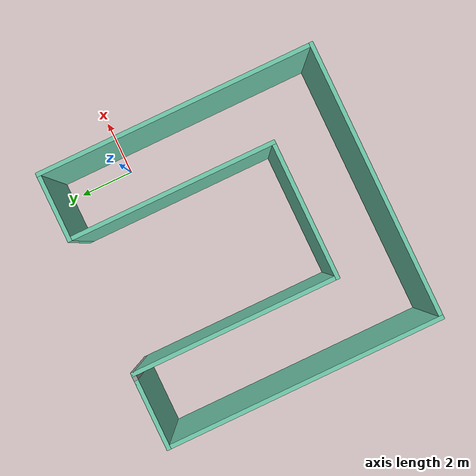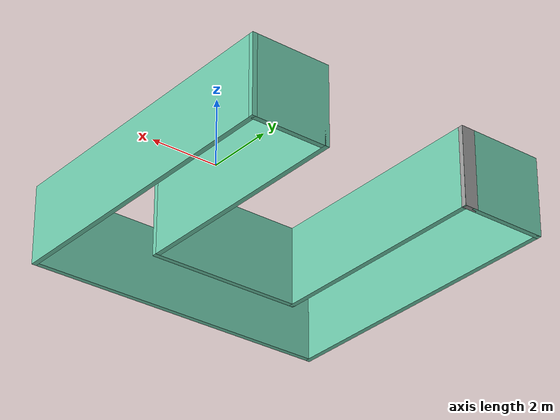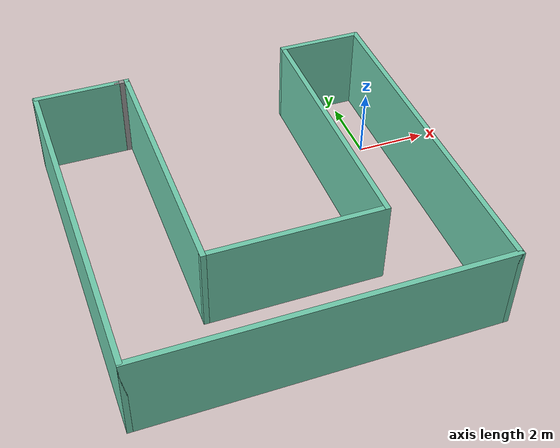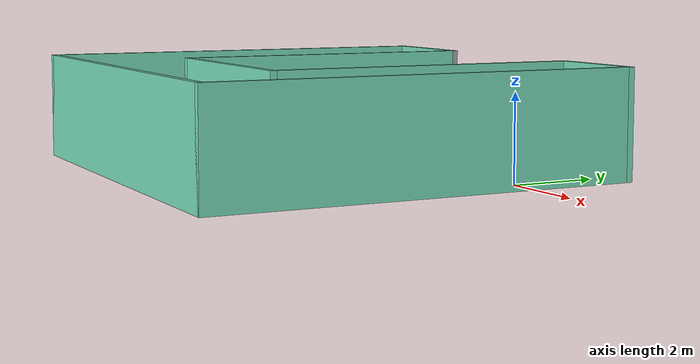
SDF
<?xml version='1.0'?>
<sdf version='1.6'>
  <model name='mybuilding'>
    <pose frame=''>-4.22308 -2.4766 0 0 -0 0</pose>
    <link name='Wall_0'>
      <collision name='Wall_0_Collision'>
        <geometry>
          <box>
            <size>2.5 0.15 2.5</size>
          </box>
        </geometry>
        <pose frame=''>0 0 1.25 0 -0 0</pose>
      </collision>
      <visual name='Wall_0_Visual'>
        <pose frame=''>0 0 1.25 0 -0 0</pose>
        <geometry>
          <box>
            <size>2.5 0.15 2.5</size>
          </box>
        </geometry>
        <material>
          <script>
            <uri>file://media/materials/scripts/gazebo.material</uri>
            <name>Gazebo/Grey</name>
          </script>
          <ambient>0.435294 0.796078 0.67451 1</ambient>
        </material>
        <meta>
          <layer>0</layer>
        </meta>
      </visual>
      <pose frame=''>-3.75 4.925 0 0 -0 3.14159</pose>
    </link>
    <link name='Wall_1'>
      <collision name='Wall_1_Collision'>
        <geometry>
          <box>
            <size>10 0.15 2.5</size>
          </box>
        </geometry>
        <pose frame=''>0 0 1.25 0 -0 0</pose>
      </collision>
      <visual name='Wall_1_Visual'>
        <pose frame=''>0 0 1.25 0 -0 0</pose>
        <geometry>
          <box>
            <size>10 0.15 2.5</size>
          </box>
        </geometry>
        <material>
          <script>
            <uri>file://media/materials/scripts/gazebo.material</uri>
            <name>Gazebo/Grey</name>
          </script>
          <ambient>0.435294 0.796078 0.67451 1</ambient>
        </material>
        <meta>
          <layer>0</layer>
        </meta>
      </visual>
      <pose frame=''>-4.925 0 0 0 0 -1.5708</pose>
    </link>
    <link name='Wall_2'>
      <collision name='Wall_2_Collision'>
        <geometry>
          <box>
            <size>10 0.15 2.5</size>
          </box>
        </geometry>
        <pose frame=''>0 0 1.25 0 -0 0</pose>
      </collision>
      <visual name='Wall_2_Visual'>
        <pose frame=''>0 0 1.25 0 -0 0</pose>
        <geometry>
          <box>
            <size>10 0.15 2.5</size>
          </box>
        </geometry>
        <material>
          <script>
            <uri>file://media/materials/scripts/gazebo.material</uri>
            <name>Gazebo/Grey</name>
          </script>
          <ambient>0.435294 0.796078 0.67451 1</ambient>
        </material>
        <meta>
          <layer>0</layer>
        </meta>
      </visual>
      <pose frame=''>0 -4.925 0 0 -0 0</pose>
    </link>
    <link name='Wall_3'>
      <collision name='Wall_3_Collision'>
        <geometry>
          <box>
            <size>10 0.15 2.5</size>
          </box>
        </geometry>
        <pose frame=''>0 0 1.25 0 -0 0</pose>
      </collision>
      <visual name='Wall_3_Visual'>
        <pose frame=''>0 0 1.25 0 -0 0</pose>
        <geometry>
          <box>
            <size>10 0.15 2.5</size>
          </box>
        </geometry>
        <material>
          <script>
            <uri>file://media/materials/scripts/gazebo.material</uri>
            <name>Gazebo/Grey</name>
          </script>
          <ambient>0.435294 0.796078 0.67451 1</ambient>
        </material>
        <meta>
          <layer>0</layer>
        </meta>
      </visual>
      <pose frame=''>4.925 0 0 0 -0 1.5708</pose>
    </link>
    <link name='Wall_4'>
      <collision name='Wall_4_Collision'>
        <geometry>
          <box>
            <size>2.5 0.15 2.5</size>
          </box>
        </geometry>
        <pose frame=''>0 0 1.25 0 -0 0</pose>
      </collision>
      <visual name='Wall_4_Visual'>
        <pose frame=''>0 0 1.25 0 -0 0</pose>
        <geometry>
          <box>
            <size>2.5 0.15 2.5</size>
          </box>
        </geometry>
        <material>
          <script>
            <uri>file://media/materials/scripts/gazebo.material</uri>
            <name>Gazebo/Grey</name>
          </script>
          <ambient>0.435294 0.796078 0.67451 1</ambient>
        </material>
        <meta>
          <layer>0</layer>
        </meta>
      </visual>
      <pose frame=''>3.75 4.925 0 0 -0 3.14159</pose>
    </link>
    <link name='Wall_5'>
      <collision name='Wall_5_Collision'>
        <geometry>
          <box>
            <size>7.5 0.15 2.5</size>
          </box>
        </geometry>
        <pose frame=''>0 0 1.25 0 -0 0</pose>
      </collision>
      <visual name='Wall_5_Visual'>
        <pose frame=''>0 0 1.25 0 -0 0</pose>
        <geometry>
          <box>
            <size>7.5 0.15 2.5</size>
          </box>
        </geometry>
        <material>
          <script>
            <uri>file://media/materials/scripts/gazebo.material</uri>
            <name>Gazebo/Grey</name>
          </script>
          <ambient>0.435294 0.796078 0.67451 1</ambient>
        </material>
        <meta>
          <layer>0</layer>
        </meta>
      </visual>
      <pose frame=''>2.575 1.25 0 0 0 -1.5708</pose>
    </link>
    <link name='Wall_6'>
      <collision name='Wall_6_Collision'>
        <geometry>
          <box>
            <size>5 0.15 2.5</size>
          </box>
        </geometry>
        <pose frame=''>0 0 1.25 0 -0 0</pose>
      </collision>
      <visual name='Wall_6_Visual'>
        <pose frame=''>0 0 1.25 0 -0 0</pose>
        <geometry>
          <box>
            <size>5 0.15 2.5</size>
          </box>
        </geometry>
        <material>
          <script>
            <uri>file://media/materials/scripts/gazebo.material</uri>
            <name>Gazebo/Grey</name>
          </script>
          <ambient>0.435294 0.796078 0.67451 1</ambient>
        </material>
        <meta>
          <layer>0</layer>
        </meta>
      </visual>
      <pose frame=''>0.15 -2.425 0 0 -0 3.14159</pose>
    </link>
    <link name='Wall_7'>
      <collision name='Wall_7_Collision'>
        <geometry>
          <box>
            <size>7.5 0.15 2.5</size>
          </box>
        </geometry>
        <pose frame=''>0 0 1.25 0 -0 0</pose>
      </collision>
      <visual name='Wall_7_Visual'>
        <pose frame=''>0 0 1.25 0 -0 0</pose>
        <geometry>
          <box>
            <size>7.5 0.15 2.5</size>
          </box>
        </geometry>
        <material>
          <script>
            <uri>file://media/materials/scripts/gazebo.material</uri>
            <name>Gazebo/Grey</name>
          </script>
          <ambient>0.435294 0.796078 0.67451 1</ambient>
        </material>
        <meta>
          <layer>0</layer>
        </meta>
      </visual>
      <pose frame=''>-2.275 1.25 0 0 -0 1.5708</pose>
    </link>
    <link name='Wall_8'>
      <collision name='Wall_8_Collision'>
        <geometry>
          <box>
            <size>0.45 0.15 2.5</size>
          </box>
        </geometry>
        <pose frame=''>0 0 1.25 0 -0 0</pose>
      </collision>
      <visual name='Wall_8_Visual'>
        <pose frame=''>0 0 1.25 0 -0 0</pose>
        <geometry>
          <box>
            <size>0.45 0.15 2.5</size>
          </box>
        </geometry>
        <material>
          <script>
            <uri>file://media/materials/scripts/gazebo.material</uri>
            <name>Gazebo/Grey</name>
          </script>
          <ambient>1 1 1 1</ambient>
        </material>
        <meta>
          <layer>0</layer>
        </meta>
      </visual>
      <pose frame=''>-2.425 4.925 0 0 0 -3.14159</pose>
    </link>
    <static>1</static>
  </model>
</sdf>
